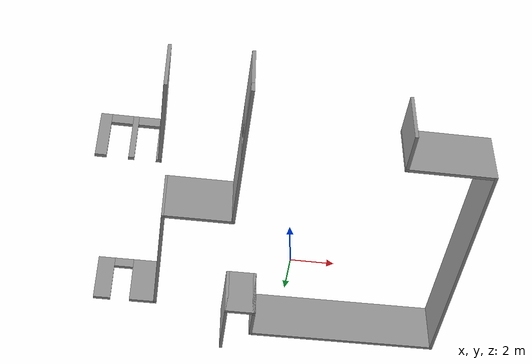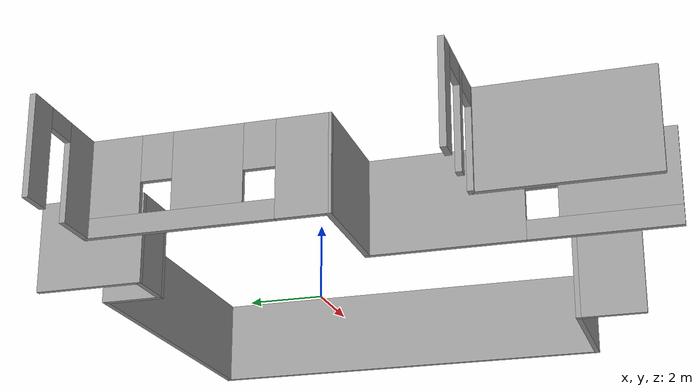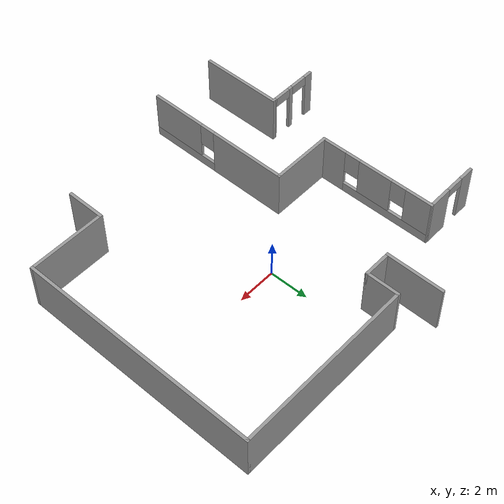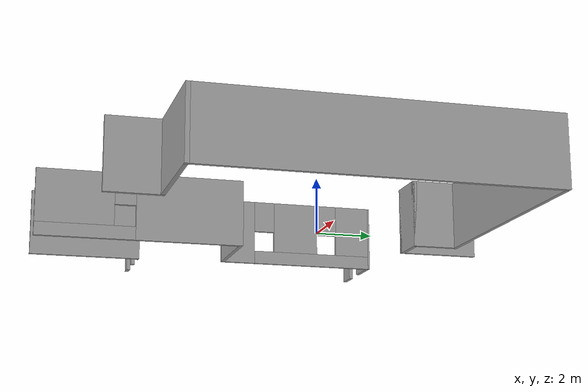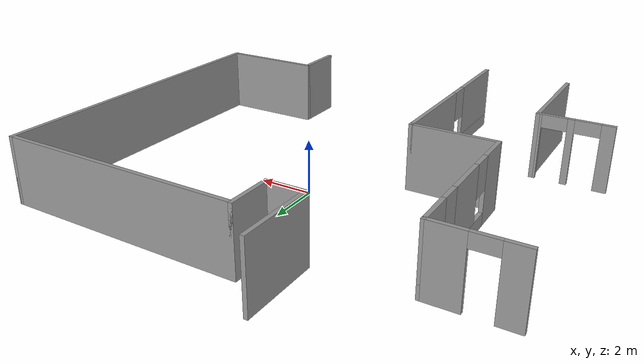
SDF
<?xml version='1.0'?>
<sdf version='1.7'>
  <model name='building2'>
    <pose>-0.464365 -1.33709 0 0 -0 0</pose>
    <link name='Wall_1'>
      <collision name='Wall_1_Collision'>
        <geometry>
          <box>
            <size>3.25 0.15 2.5</size>
          </box>
        </geometry>
        <pose>0 0 1.25 0 -0 0</pose>
      </collision>
      <visual name='Wall_1_Visual'>
        <pose>0 0 1.25 0 -0 0</pose>
        <geometry>
          <box>
            <size>3.25 0.15 2.5</size>
          </box>
        </geometry>
        <material>
          <script>
            <uri>file://media/materials/scripts/gazebo.material</uri>
            <name>Gazebo/Grey</name>
          </script>
          <ambient>1 1 1 1</ambient>
        </material>
        <meta>
          <layer>0</layer>
        </meta>
      </visual>
      <pose>-3.91564 -0.782909 0 0 -0 0</pose>
    </link>
    <link name='Wall_10'>
      <pose>-6.93769 5.27004 0 0 -0 3.14159</pose>
      <visual name='Wall_10_Visual_0'>
        <pose>-0.850707 0 1.25 0 -0 0</pose>
        <geometry>
          <box>
            <size>1.29859 0.15 2.5</size>
          </box>
        </geometry>
        <material>
          <script>
            <uri>file://media/materials/scripts/gazebo.material</uri>
            <name>Gazebo/Grey</name>
          </script>
          <ambient>1 1 1 1</ambient>
        </material>
        <meta>
          <layer>0</layer>
        </meta>
      </visual>
      <collision name='Wall_10_Collision_0'>
        <geometry>
          <box>
            <size>1.29859 0.15 2.5</size>
          </box>
        </geometry>
        <pose>-0.850707 0 1.25 0 -0 0</pose>
      </collision>
      <visual name='Wall_10_Visual_1'>
        <pose>1.09929 0 1.25 0 -0 0</pose>
        <geometry>
          <box>
            <size>0.801414 0.15 2.5</size>
          </box>
        </geometry>
        <material>
          <script>
            <uri>file://media/materials/scripts/gazebo.material</uri>
            <name>Gazebo/Grey</name>
          </script>
          <ambient>1 1 1 1</ambient>
        </material>
        <meta>
          <layer>0</layer>
        </meta>
      </visual>
      <collision name='Wall_10_Collision_1'>
        <geometry>
          <box>
            <size>0.801414 0.15 2.5</size>
          </box>
        </geometry>
        <pose>1.09929 0 1.25 0 -0 0</pose>
      </collision>
      <visual name='Wall_10_Visual_2'>
        <pose>0.248586 0 2.25 0 -0 0</pose>
        <geometry>
          <box>
            <size>0.9 0.15 0.5</size>
          </box>
        </geometry>
        <material>
          <script>
            <uri>file://media/materials/scripts/gazebo.material</uri>
            <name>Gazebo/Grey</name>
          </script>
          <ambient>1 1 1 1</ambient>
        </material>
        <meta>
          <layer>0</layer>
        </meta>
      </visual>
      <collision name='Wall_10_Collision_2'>
        <geometry>
          <box>
            <size>0.9 0.15 0.5</size>
          </box>
        </geometry>
        <pose>0.248586 0 2.25 0 -0 0</pose>
      </collision>
    </link>
    <link name='Wall_13'>
      <collision name='Wall_13_Collision'>
        <geometry>
          <box>
            <size>3 0.15 2.5</size>
          </box>
        </geometry>
        <pose>0 0 1.25 0 -0 0</pose>
      </collision>
      <visual name='Wall_13_Visual'>
        <pose>0 0 1.25 0 -0 0</pose>
        <geometry>
          <box>
            <size>3 0.15 2.5</size>
          </box>
        </geometry>
        <material>
          <script>
            <uri>file://media/materials/scripts/gazebo.material</uri>
            <name>Gazebo/Grey</name>
          </script>
          <ambient>1 1 1 1</ambient>
        </material>
        <meta>
          <layer>0</layer>
        </meta>
      </visual>
      <pose>-2.07281 6.95791 0 0 -0 -1.5708</pose>
    </link>
    <link name='Wall_14'>
      <collision name='Wall_14_Collision'>
        <geometry>
          <box>
            <size>1.5 0.15 2.5</size>
          </box>
        </geometry>
        <pose>0 0 1.25 0 -0 0</pose>
      </collision>
      <visual name='Wall_14_Visual'>
        <pose>0 0 1.25 0 -0 0</pose>
        <geometry>
          <box>
            <size>1.5 0.15 2.5</size>
          </box>
        </geometry>
        <material>
          <script>
            <uri>file://media/materials/scripts/gazebo.material</uri>
            <name>Gazebo/Grey</name>
          </script>
          <ambient>1 1 1 1</ambient>
        </material>
        <meta>
          <layer>0</layer>
        </meta>
      </visual>
      <pose>-1.39781 5.53291 0 0 -0 0</pose>
    </link>
    <link name='Wall_15'>
      <collision name='Wall_15_Collision'>
        <geometry>
          <box>
            <size>1.75 0.15 2.5</size>
          </box>
        </geometry>
        <pose>0 0 1.25 0 -0 0</pose>
      </collision>
      <visual name='Wall_15_Visual'>
        <pose>0 0 1.25 0 -0 0</pose>
        <geometry>
          <box>
            <size>1.75 0.15 2.5</size>
          </box>
        </geometry>
        <material>
          <script>
            <uri>file://media/materials/scripts/gazebo.material</uri>
            <name>Gazebo/Grey</name>
          </script>
          <ambient>1 1 1 1</ambient>
        </material>
        <meta>
          <layer>0</layer>
        </meta>
      </visual>
      <pose>-0.722812 6.33291 0 0 -0 1.5708</pose>
    </link>
    <link name='Wall_16'>
      <collision name='Wall_16_Collision'>
        <geometry>
          <box>
            <size>9.25 0.15 2.5</size>
          </box>
        </geometry>
        <pose>0 0 1.25 0 -0 0</pose>
      </collision>
      <visual name='Wall_16_Visual'>
        <pose>0 0 1.25 0 -0 0</pose>
        <geometry>
          <box>
            <size>9.25 0.15 2.5</size>
          </box>
        </geometry>
        <material>
          <script>
            <uri>file://media/materials/scripts/gazebo.material</uri>
            <name>Gazebo/Grey</name>
          </script>
          <ambient>1 1 1 1</ambient>
        </material>
        <meta>
          <layer>0</layer>
        </meta>
      </visual>
      <pose>3.82719 7.13291 0 0 -0 0</pose>
    </link>
    <link name='Wall_18'>
      <collision name='Wall_18_Collision'>
        <geometry>
          <box>
            <size>12.25 0.15 2.5</size>
          </box>
        </geometry>
        <pose>0 0 1.25 0 -0 0</pose>
      </collision>
      <visual name='Wall_18_Visual'>
        <pose>0 0 1.25 0 -0 0</pose>
        <geometry>
          <box>
            <size>12.25 0.15 2.5</size>
          </box>
        </geometry>
        <material>
          <script>
            <uri>file://media/materials/scripts/gazebo.material</uri>
            <name>Gazebo/Grey</name>
          </script>
          <ambient>1 1 1 1</ambient>
        </material>
        <meta>
          <layer>0</layer>
        </meta>
      </visual>
      <pose>8.37719 1.08291 0 0 -0 -1.5708</pose>
    </link>
    <link name='Wall_2'>
      <pose>-2.36564 -4.58291 0 0 -0 -1.5708</pose>
      <visual name='Wall_2_Visual_0'>
        <pose>-1.85139 0 1.25 0 -0 0</pose>
        <geometry>
          <box>
            <size>4.04722 0.15 2.5</size>
          </box>
        </geometry>
        <material>
          <script>
            <uri>file://media/materials/scripts/gazebo.material</uri>
            <name>Gazebo/Grey</name>
          </script>
          <ambient>1 1 1 1</ambient>
        </material>
        <meta>
          <layer>0</layer>
        </meta>
      </visual>
      <collision name='Wall_2_Collision_0'>
        <geometry>
          <box>
            <size>4.04722 0.15 2.5</size>
          </box>
        </geometry>
        <pose>-1.85139 0 1.25 0 -0 0</pose>
      </collision>
      <visual name='Wall_2_Visual_1'>
        <pose>2.02361 0 0.25 0 -0 0</pose>
        <geometry>
          <box>
            <size>3.70278 0.15 0.5</size>
          </box>
        </geometry>
        <material>
          <script>
            <uri>file://media/materials/scripts/gazebo.material</uri>
            <name>Gazebo/Grey</name>
          </script>
          <ambient>1 1 1 1</ambient>
        </material>
        <meta>
          <layer>0</layer>
        </meta>
      </visual>
      <collision name='Wall_2_Collision_1'>
        <geometry>
          <box>
            <size>3.70278 0.15 0.5</size>
          </box>
        </geometry>
        <pose>2.02361 0 0.25 0 -0 0</pose>
      </collision>
      <visual name='Wall_2_Visual_2'>
        <pose>2.42361 0 1.5 0 -0 0</pose>
        <geometry>
          <box>
            <size>2.90278 0.15 2</size>
          </box>
        </geometry>
        <material>
          <script>
            <uri>file://media/materials/scripts/gazebo.material</uri>
            <name>Gazebo/Grey</name>
          </script>
          <ambient>1 1 1 1</ambient>
        </material>
        <meta>
          <layer>0</layer>
        </meta>
      </visual>
      <collision name='Wall_2_Collision_2'>
        <geometry>
          <box>
            <size>2.90278 0.15 2</size>
          </box>
        </geometry>
        <pose>2.42361 0 1.5 0 -0 0</pose>
      </collision>
      <visual name='Wall_2_Visual_3'>
        <pose>0.57222 0 1.9 0 -0 0</pose>
        <geometry>
          <box>
            <size>0.8 0.15 1.2</size>
          </box>
        </geometry>
        <material>
          <script>
            <uri>file://media/materials/scripts/gazebo.material</uri>
            <name>Gazebo/Grey</name>
          </script>
          <ambient>1 1 1 1</ambient>
        </material>
        <meta>
          <layer>0</layer>
        </meta>
      </visual>
      <collision name='Wall_2_Collision_3'>
        <geometry>
          <box>
            <size>0.8 0.15 1.2</size>
          </box>
        </geometry>
        <pose>0.57222 0 1.9 0 -0 0</pose>
      </collision>
    </link>
    <link name='Wall_21'>
      <collision name='Wall_21_Collision'>
        <geometry>
          <box>
            <size>4 0.15 2.5</size>
          </box>
        </geometry>
        <pose>0 0 1.25 0 -0 0</pose>
      </collision>
      <visual name='Wall_21_Visual'>
        <pose>0 0 1.25 0 -0 0</pose>
        <geometry>
          <box>
            <size>4 0.15 2.5</size>
          </box>
        </geometry>
        <material>
          <script>
            <uri>file://media/materials/scripts/gazebo.material</uri>
            <name>Gazebo/Grey</name>
          </script>
          <ambient>1 1 1 1</ambient>
        </material>
        <meta>
          <layer>0</layer>
        </meta>
      </visual>
      <pose>6.45219 -4.96709 0 0 -0 3.14159</pose>
    </link>
    <link name='Wall_22'>
      <collision name='Wall_22_Collision'>
        <geometry>
          <box>
            <size>2 0.15 2.5</size>
          </box>
        </geometry>
        <pose>0 0 1.25 0 -0 0</pose>
      </collision>
      <visual name='Wall_22_Visual'>
        <pose>0 0 1.25 0 -0 0</pose>
        <geometry>
          <box>
            <size>2 0.15 2.5</size>
          </box>
        </geometry>
        <material>
          <script>
            <uri>file://media/materials/scripts/gazebo.material</uri>
            <name>Gazebo/Grey</name>
          </script>
          <ambient>1 1 1 1</ambient>
        </material>
        <meta>
          <layer>0</layer>
        </meta>
      </visual>
      <pose>4.52719 -5.89209 0 0 -0 -1.5708</pose>
    </link>
    <link name='Wall_5'>
      <collision name='Wall_5_Collision'>
        <geometry>
          <box>
            <size>4.25 0.15 2.5</size>
          </box>
        </geometry>
        <pose>0 0 1.25 0 -0 0</pose>
      </collision>
      <visual name='Wall_5_Visual'>
        <pose>0 0 1.25 0 -0 0</pose>
        <geometry>
          <box>
            <size>4.25 0.15 2.5</size>
          </box>
        </geometry>
        <material>
          <script>
            <uri>file://media/materials/scripts/gazebo.material</uri>
            <name>Gazebo/Grey</name>
          </script>
          <ambient>1 1 1 1</ambient>
        </material>
        <meta>
          <layer>0</layer>
        </meta>
      </visual>
      <pose>-5.77719 -6.20253 0 0 -0 -1.5708</pose>
    </link>
    <link name='Wall_7'>
      <pose>-7.07719 -4.15253 0 0 -0 3.14159</pose>
      <visual name='Wall_7_Visual_0'>
        <pose>-1.25987 0 1.25 0 -0 0</pose>
        <geometry>
          <box>
            <size>0.230254 0.15 2.5</size>
          </box>
        </geometry>
        <material>
          <script>
            <uri>file://media/materials/scripts/gazebo.material</uri>
            <name>Gazebo/Grey</name>
          </script>
          <ambient>1 1 1 1</ambient>
        </material>
        <meta>
          <layer>0</layer>
        </meta>
      </visual>
      <collision name='Wall_7_Collision_0'>
        <geometry>
          <box>
            <size>0.230254 0.15 2.5</size>
          </box>
        </geometry>
        <pose>-1.25987 0 1.25 0 -0 0</pose>
      </collision>
      <visual name='Wall_7_Visual_1'>
        <pose>-0.1243 0 1.25 0 -0 0</pose>
        <geometry>
          <box>
            <size>0.240891 0.15 2.5</size>
          </box>
        </geometry>
        <material>
          <script>
            <uri>file://media/materials/scripts/gazebo.material</uri>
            <name>Gazebo/Grey</name>
          </script>
          <ambient>1 1 1 1</ambient>
        </material>
        <meta>
          <layer>0</layer>
        </meta>
      </visual>
      <collision name='Wall_7_Collision_1'>
        <geometry>
          <box>
            <size>0.240891 0.15 2.5</size>
          </box>
        </geometry>
        <pose>-0.1243 0 1.25 0 -0 0</pose>
      </collision>
      <visual name='Wall_7_Visual_2'>
        <pose>1.13557 0 1.25 0 -0 0</pose>
        <geometry>
          <box>
            <size>0.478854 0.15 2.5</size>
          </box>
        </geometry>
        <material>
          <script>
            <uri>file://media/materials/scripts/gazebo.material</uri>
            <name>Gazebo/Grey</name>
          </script>
          <ambient>1 1 1 1</ambient>
        </material>
        <meta>
          <layer>0</layer>
        </meta>
      </visual>
      <collision name='Wall_7_Collision_2'>
        <geometry>
          <box>
            <size>0.478854 0.15 2.5</size>
          </box>
        </geometry>
        <pose>1.13557 0 1.25 0 -0 0</pose>
      </collision>
      <visual name='Wall_7_Visual_3'>
        <pose>-0.694746 0 2.25 0 -0 0</pose>
        <geometry>
          <box>
            <size>0.9 0.15 0.5</size>
          </box>
        </geometry>
        <material>
          <script>
            <uri>file://media/materials/scripts/gazebo.material</uri>
            <name>Gazebo/Grey</name>
          </script>
          <ambient>1 1 1 1</ambient>
        </material>
        <meta>
          <layer>0</layer>
        </meta>
      </visual>
      <collision name='Wall_7_Collision_3'>
        <geometry>
          <box>
            <size>0.9 0.15 0.5</size>
          </box>
        </geometry>
        <pose>-0.694746 0 2.25 0 -0 0</pose>
      </collision>
      <visual name='Wall_7_Visual_4'>
        <pose>0.446146 0 2.25 0 -0 0</pose>
        <geometry>
          <box>
            <size>0.9 0.15 0.5</size>
          </box>
        </geometry>
        <material>
          <script>
            <uri>file://media/materials/scripts/gazebo.material</uri>
            <name>Gazebo/Grey</name>
          </script>
          <ambient>1 1 1 1</ambient>
        </material>
        <meta>
          <layer>0</layer>
        </meta>
      </visual>
      <collision name='Wall_7_Collision_4'>
        <geometry>
          <box>
            <size>0.9 0.15 0.5</size>
          </box>
        </geometry>
        <pose>0.446146 0 2.25 0 -0 0</pose>
      </collision>
    </link>
    <link name='Wall_9'>
      <pose>-5.48916 2.24356 0 0 -0 1.57857</pose>
      <visual name='Wall_9_Visual_0'>
        <pose>-2.41932 0 1.25 0 -0 0</pose>
        <geometry>
          <box>
            <size>1.36504 0.15 2.5</size>
          </box>
        </geometry>
        <material>
          <script>
            <uri>file://media/materials/scripts/gazebo.material</uri>
            <name>Gazebo/Grey</name>
          </script>
          <ambient>1 1 1 1</ambient>
        </material>
        <meta>
          <layer>0</layer>
        </meta>
      </visual>
      <collision name='Wall_9_Collision_0'>
        <geometry>
          <box>
            <size>1.36504 0.15 2.5</size>
          </box>
        </geometry>
        <pose>-2.41932 0 1.25 0 -0 0</pose>
      </collision>
      <visual name='Wall_9_Visual_1'>
        <pose>0.682521 0 0.25 0 -0 0</pose>
        <geometry>
          <box>
            <size>4.83864 0.15 0.5</size>
          </box>
        </geometry>
        <material>
          <script>
            <uri>file://media/materials/scripts/gazebo.material</uri>
            <name>Gazebo/Grey</name>
          </script>
          <ambient>1 1 1 1</ambient>
        </material>
        <meta>
          <layer>0</layer>
        </meta>
      </visual>
      <collision name='Wall_9_Collision_1'>
        <geometry>
          <box>
            <size>4.83864 0.15 0.5</size>
          </box>
        </geometry>
        <pose>0.682521 0 0.25 0 -0 0</pose>
      </collision>
      <visual name='Wall_9_Visual_2'>
        <pose>-0.039376 0 1.5 0 -0 0</pose>
        <geometry>
          <box>
            <size>1.79484 0.15 2</size>
          </box>
        </geometry>
        <material>
          <script>
            <uri>file://media/materials/scripts/gazebo.material</uri>
            <name>Gazebo/Grey</name>
          </script>
          <ambient>1 1 1 1</ambient>
        </material>
        <meta>
          <layer>0</layer>
        </meta>
      </visual>
      <collision name='Wall_9_Collision_2'>
        <geometry>
          <box>
            <size>1.79484 0.15 2</size>
          </box>
        </geometry>
        <pose>-0.039376 0 1.5 0 -0 0</pose>
      </collision>
      <visual name='Wall_9_Visual_3'>
        <pose>2.37994 0 1.5 0 -0 0</pose>
        <geometry>
          <box>
            <size>1.44379 0.15 2</size>
          </box>
        </geometry>
        <material>
          <script>
            <uri>file://media/materials/scripts/gazebo.material</uri>
            <name>Gazebo/Grey</name>
          </script>
          <ambient>1 1 1 1</ambient>
        </material>
        <meta>
          <layer>0</layer>
        </meta>
      </visual>
      <collision name='Wall_9_Collision_3'>
        <geometry>
          <box>
            <size>1.44379 0.15 2</size>
          </box>
        </geometry>
        <pose>2.37994 0 1.5 0 -0 0</pose>
      </collision>
      <visual name='Wall_9_Visual_4'>
        <pose>-1.3368 0 1.9 0 -0 0</pose>
        <geometry>
          <box>
            <size>0.8 0.15 1.2</size>
          </box>
        </geometry>
        <material>
          <script>
            <uri>file://media/materials/scripts/gazebo.material</uri>
            <name>Gazebo/Grey</name>
          </script>
          <ambient>1 1 1 1</ambient>
        </material>
        <meta>
          <layer>0</layer>
        </meta>
      </visual>
      <collision name='Wall_9_Collision_4'>
        <geometry>
          <box>
            <size>0.8 0.15 1.2</size>
          </box>
        </geometry>
        <pose>-1.3368 0 1.9 0 -0 0</pose>
      </collision>
      <visual name='Wall_9_Visual_5'>
        <pose>1.25805 0 1.9 0 -0 0</pose>
        <geometry>
          <box>
            <size>0.8 0.15 1.2</size>
          </box>
        </geometry>
        <material>
          <script>
            <uri>file://media/materials/scripts/gazebo.material</uri>
            <name>Gazebo/Grey</name>
          </script>
          <ambient>1 1 1 1</ambient>
        </material>
        <meta>
          <layer>0</layer>
        </meta>
      </visual>
      <collision name='Wall_9_Collision_5'>
        <geometry>
          <box>
            <size>0.8 0.15 1.2</size>
          </box>
        </geometry>
        <pose>1.25805 0 1.9 0 -0 0</pose>
      </collision>
    </link>
    <static>1</static>
  </model>
</sdf>
